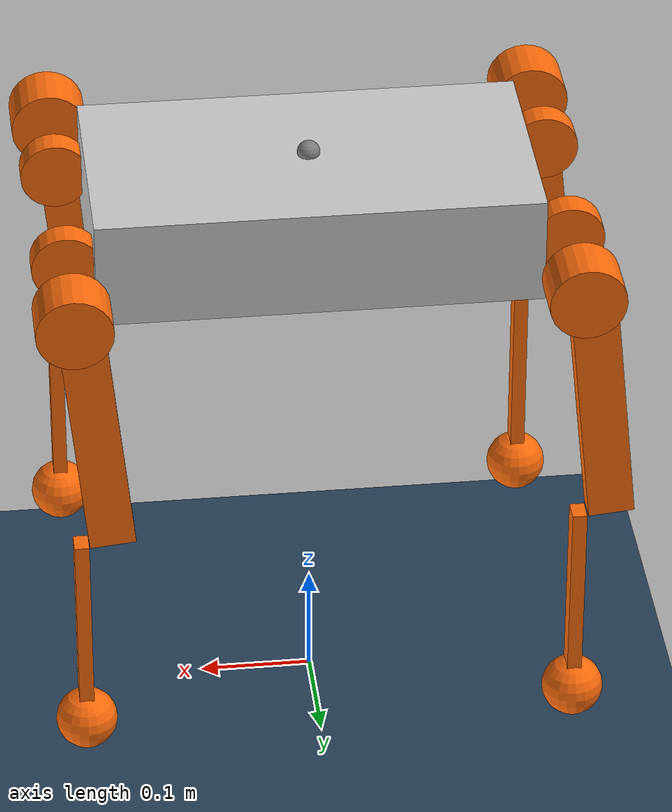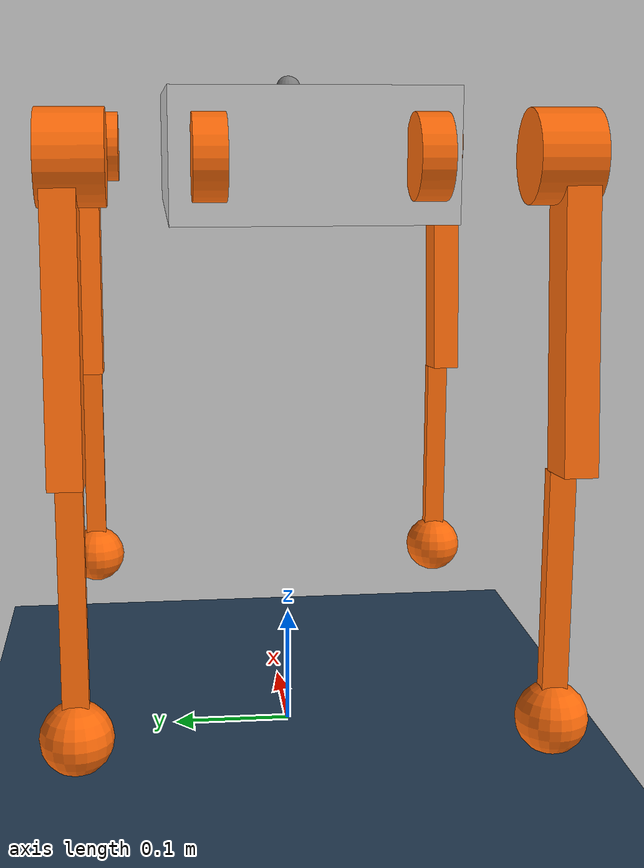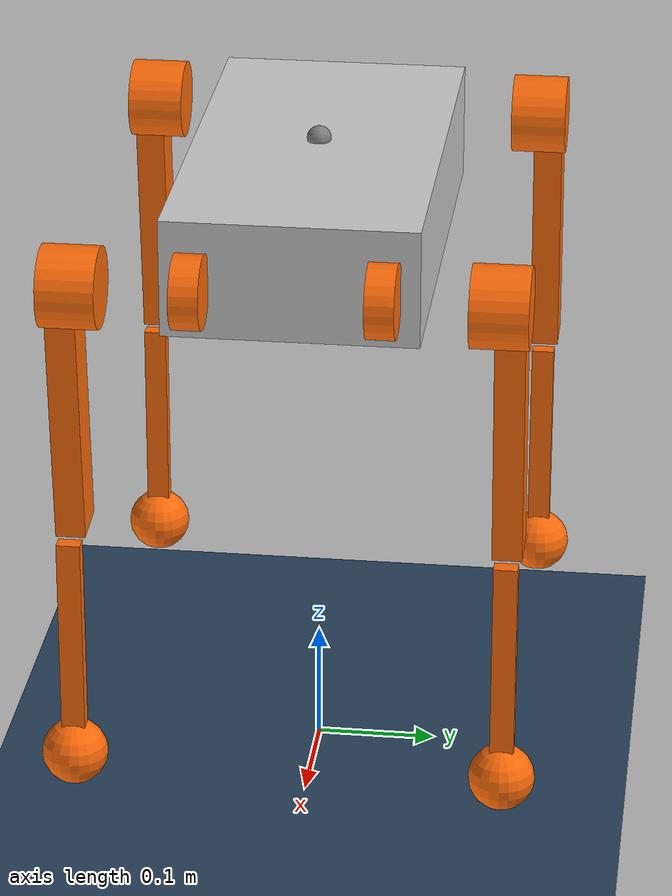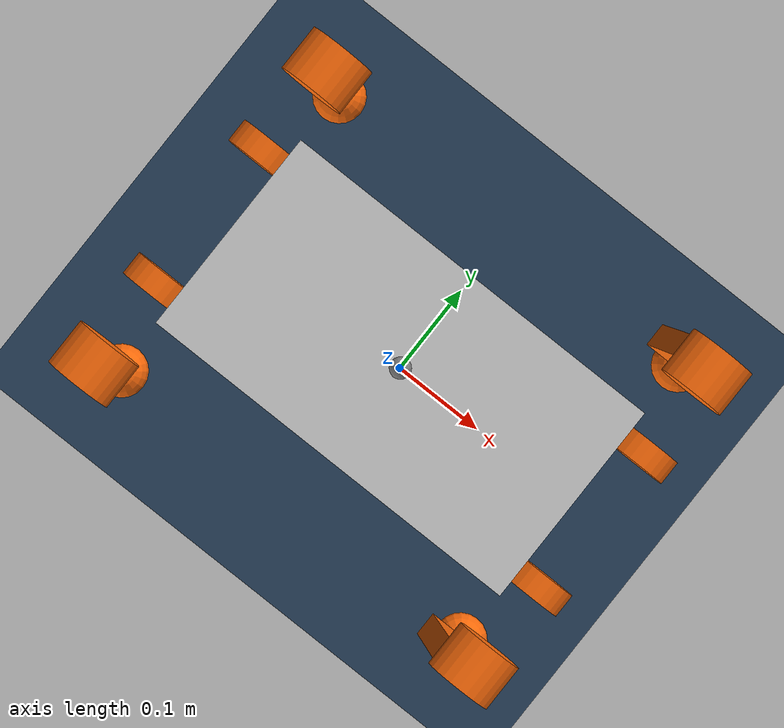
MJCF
<mujoco model="quadruped_robot">
  <compiler angle="radian" inertiafromgeom="auto"/>

  <!-- 优化的仿真参数 -->
  <option timestep="0.005" iterations="50" solver="Newton" tolerance="1e-10"/>

  <!-- 默认参数设置 -->
  <default>
    <joint damping="0.1" frictionloss="0.01"/>
    <geom friction="0.8 0.02 0.01" margin="0.001" gap="0.0"/>
    <motor ctrllimited="true" ctrlrange="-33.5 33.5"/>
  </default>

  <!-- 资源 -->
  <asset>
    <texture name="grid" type="2d" builtin="checker" rgb1=".1 .2 .3" rgb2=".2 .3 .4" width="300" height="300"/>
    <material name="grid" texture="grid" texrepeat="8 8" reflectance=".2"/>
  </asset>

  <worldbody>
    <!-- 地面 -->
    <geom name="ground" size="10 10 0.1" type="plane" material="grid"/>
    <light pos="0 0 3" dir="0 0 -1"/>

    <!-- 机器人主体 -->
    <body name="base" pos="0 0 0.5">
      <site name="imu_site" pos="0 0 0.05" size="0.01"/>
      <!-- 浮动基座 -->
      <freejoint name="floating_base"/>
      <!-- Third-person chase camera rigidly attached to base -->
      <camera name="chase_cam" pos="-2 0 2" xyaxes="0 -1 0 1 0 1"/>

      <!-- 主体几何形状（MuJoCo将自动计算惯性） -->
      <geom name="trunk" size="0.192 0.102 0.048" type="box" rgba="0.8 0.8 0.8 1" mass="5.144"/>

      <!-- 前左腿 (FL) -->
      <body name="FL_hip" pos="0.215 0.075 0">
        <joint name="FL_hip_joint" pos="0 0 0" axis="1 0 0" range="-0.802851 0.802851"
               damping="0.1" frictionloss="0.01"/>
        <geom name="FL_hip_geom" size="0.030 0.0116" quat="0.707107 0.707107 0 0" type="cylinder"
              rgba="1 0.423529 0.0392157 1" mass="0.847"/>

        <body name="FL_thigh" pos="0 0.09914 0">
          <joint name="FL_thigh_joint" pos="0 0 0" axis="0 1 0" range="-1.0472 4.18879"
                 damping="0.15" frictionloss="0.01"/>
          <geom name="FL_thigh_geom1" size="0.118 0.012 0.020" pos="-0.015 0 -0.1" quat="0.670882 0 0.741564 0"
                type="box" rgba="1 0.423529 0.0392157 1" mass="1.103"/>
          <geom name="FL_thigh_geom2" size="0.033 0.023" pos="0 -0.008 0" quat="0.707107 0.707107 0 0"
                type="cylinder" rgba="1 0.423529 0.0392157 1" mass="0.237"/>

          <body name="FL_calf" pos="0 0 -0.2">
            <joint name="FL_calf_joint" pos="0 0 0" axis="0 1 0" range="-2.69653 -0.916298"
                   damping="0.1" frictionloss="0.01"/>
            <geom name="FL_calf_geom" size="0.084 0.0096 0.0064" pos="0 0 -0.1051" quat="0.707107 0 0.707107 0"
                  type="box" rgba="1 0.423529 0.0392157 1" mass="0.210"/>
            <geom name="FL_foot" size="0.027" pos="0 0 -0.2102" rgba="1 0.423529 0.0392157 1"
                  friction="1.2 0.05 0.01" mass="0.012"/>
          </body>
        </body>
      </body>

      <!-- 后左腿 (RL) -->
      <body name="RL_hip" pos="-0.215 0.075 0">
        <joint name="RL_hip_joint" pos="0 0 0" axis="1 0 0" range="-0.802851 0.802851"
               damping="0.1" frictionloss="0.01"/>
        <geom name="RL_hip_geom" size="0.030 0.0116" quat="0.707107 0.707107 0 0" type="cylinder"
              rgba="1 0.423529 0.0392157 1" mass="0.847"/>

        <body name="RL_thigh" pos="0 0.09914 0">
          <joint name="RL_thigh_joint" pos="0 0 0" axis="0 1 0" range="-1.0472 4.18879"
                 damping="0.15" frictionloss="0.01"/>
          <geom name="RL_thigh_geom1" size="0.118 0.012 0.020" pos="-0.015 0 -0.1" quat="0.670882 0 0.741564 0"
                type="box" rgba="1 0.423529 0.0392157 1" mass="1.103"/>
          <geom name="RL_thigh_geom2" size="0.033 0.023" pos="0 -0.008 0" quat="0.707107 0.707107 0 0"
                type="cylinder" rgba="1 0.423529 0.0392157 1" mass="0.237"/>

          <body name="RL_calf" pos="0 0 -0.2">
            <joint name="RL_calf_joint" pos="0 0 0" axis="0 1 0" range="-2.69653 -0.916298"
                   damping="0.1" frictionloss="0.01"/>
            <geom name="RL_calf_geom" size="0.084 0.0096 0.0064" pos="0 0 -0.1051" quat="0.707107 0 0.707107 0"
                  type="box" rgba="1 0.423529 0.0392157 1" mass="0.210"/>
            <geom name="RL_foot" size="0.027" pos="0 0 -0.2102" rgba="1 0.423529 0.0392157 1"
                  friction="1.2 0.05 0.01" mass="0.012"/>
          </body>
        </body>
      </body>

      <!-- 前右腿 (FR) -->
      <body name="FR_hip" pos="0.215 -0.075 0">
        <joint name="FR_hip_joint" pos="0 0 0" axis="1 0 0" range="-0.802851 0.802851"
               damping="0.1" frictionloss="0.01"/>
        <geom name="FR_hip_geom" size="0.030 0.0116" quat="0.707107 0.707107 0 0" type="cylinder"
              rgba="1 0.423529 0.0392157 1" mass="0.847"/>

        <body name="FR_thigh" pos="0 -0.09914 0">
          <joint name="FR_thigh_joint" pos="0 0 0" axis="0 1 0" range="-1.0472 4.18879"
                 damping="0.15" frictionloss="0.01"/>
          <geom name="FR_thigh_geom1" size="0.118 0.012 0.020" pos="-0.015 0 -0.1" quat="0.670882 0 0.741564 0"
                type="box" rgba="1 0.423529 0.0392157 1" mass="1.103"/>
          <geom name="FR_thigh_geom2" size="0.033 0.023" pos="0 0.008 0" quat="0.707107 0.707107 0 0"
                type="cylinder" rgba="1 0.423529 0.0392157 1" mass="0.237"/>

          <body name="FR_calf" pos="0 0 -0.2">
            <joint name="FR_calf_joint" pos="0 0 0" axis="0 1 0" range="-2.69653 -0.916298"
                   damping="0.1" frictionloss="0.01"/>
            <geom name="FR_calf_geom" size="0.084 0.0096 0.0064" pos="0 0 -0.1051" quat="0.707107 0 0.707107 0"
                  type="box" rgba="1 0.423529 0.0392157 1" mass="0.210"/>
            <geom name="FR_foot" size="0.027" pos="0 0 -0.2102" rgba="1 0.423529 0.0392157 1"
                  friction="1.2 0.05 0.01" mass="0.012"/>
          </body>
        </body>
      </body>

      <!-- 后右腿 (RR) -->
      <body name="RR_hip" pos="-0.215 -0.075 0">
        <joint name="RR_hip_joint" pos="0 0 0" axis="1 0 0" range="-0.802851 0.802851"
               damping="0.1" frictionloss="0.01"/>
        <geom name="RR_hip_geom" size="0.030 0.0116" quat="0.707107 0.707107 0 0" type="cylinder"
              rgba="1 0.423529 0.0392157 1" mass="0.847"/>

        <body name="RR_thigh" pos="0 -0.09914 0">
          <joint name="RR_thigh_joint" pos="0 0 0" axis="0 1 0" range="-1.0472 4.18879"
                 damping="0.15" frictionloss="0.01"/>
          <geom name="RR_thigh_geom1" size="0.118 0.012 0.020" pos="-0.015 0 -0.1" quat="0.670882 0 0.741564 0"
                type="box" rgba="1 0.423529 0.0392157 1" mass="1.103"/>
          <geom name="RR_thigh_geom2" size="0.033 0.023" pos="0 0.008 0" quat="0.707107 0.707107 0 0"
                type="cylinder" rgba="1 0.423529 0.0392157 1" mass="0.237"/>

          <body name="RR_calf" pos="0 0 -0.2">
            <joint name="RR_calf_joint" pos="0 0 0" axis="0 1 0" range="-2.69653 -0.916298"
                   damping="0.1" frictionloss="0.01"/>
            <geom name="RR_calf_geom" size="0.084 0.0096 0.0064" pos="0 0 -0.1051" quat="0.707107 0 0.707107 0"
                  type="box" rgba="1 0.423529 0.0392157 1" mass="0.210"/>
            <geom name="RR_foot" size="0.027" pos="0 0 -0.2102" rgba="1 0.423529 0.0392157 1"
                  friction="1.2 0.05 0.01" mass="0.012"/>
          </body>
        </body>
      </body>
    </body>
  </worldbody>

  <!-- 电机驱动器 -->
  <actuator>
    <!-- 前左腿电机 -->
    <motor name="FL_hip_motor" joint="FL_hip_joint" gear="1"/>
    <motor name="FL_thigh_motor" joint="FL_thigh_joint" gear="1"/>
    <motor name="FL_calf_motor" joint="FL_calf_joint" gear="1"/>

    <!-- 后左腿电机 -->
    <motor name="RL_hip_motor" joint="RL_hip_joint" gear="1"/>
    <motor name="RL_thigh_motor" joint="RL_thigh_joint" gear="1"/>
    <motor name="RL_calf_motor" joint="RL_calf_joint" gear="1"/>

    <!-- 前右腿电机 -->
    <motor name="FR_hip_motor" joint="FR_hip_joint" gear="1"/>
    <motor name="FR_thigh_motor" joint="FR_thigh_joint" gear="1"/>
    <motor name="FR_calf_motor" joint="FR_calf_joint" gear="1"/>

    <!-- 后右腿电机 -->
    <motor name="RR_hip_motor" joint="RR_hip_joint" gear="1"/>
    <motor name="RR_thigh_motor" joint="RR_thigh_joint" gear="1"/>
    <motor name="RR_calf_motor" joint="RR_calf_joint" gear="1"/>
  </actuator>

  <sensor>
    <!-- IMU传感器 - 必须通过site定位 -->
    <!-- 加速度计 - 测量躯干坐标系下的加速度（包含重力） -->
    <accelerometer name="base_accelerometer" site="imu_site"/>
    <!-- 陀螺仪 - 测量躯干坐标系下的角速度 -->
    <gyro name="base_gyro" site="imu_site"/>
    <!-- 躯干线速度传感器 - 用于调试和验证 -->
    <velocimeter name="base_velocimeter" site="imu_site"/>
  </sensor>
</mujoco>
